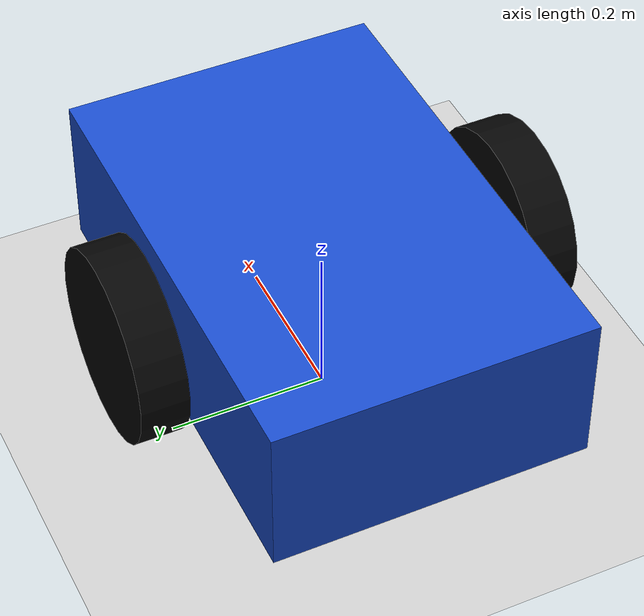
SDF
<?xml version="1.0" ?>
<sdf version="1.10">
  <world name="mobile_base_minimal">
    <physics name="1ms" type="ignored">
      <max_step_size>0.001</max_step_size>
      <real_time_factor>1.0</real_time_factor>
    </physics>

    <plugin filename="gz-sim-physics-system" name="gz::sim::systems::Physics"/>
    <plugin filename="gz-sim-user-commands-system" name="gz::sim::systems::UserCommands"/>
    <plugin filename="gz-sim-scene-broadcaster-system" name="gz::sim::systems::SceneBroadcaster"/>

    <light name="sun" type="directional">
      <cast_shadows>true</cast_shadows>
      <pose>0 0 10 0 0 0</pose>
      <diffuse>0.8 0.8 0.8 1</diffuse>
      <specular>0.2 0.2 0.2 1</specular>
      <direction>-0.5 0.1 -0.9</direction>
    </light>

    <model name="ground_plane">
      <static>true</static>
      <link name="link">
        <collision name="collision">
          <geometry>
            <plane>
              <normal>0 0 1</normal>
              <size>10 10</size>
            </plane>
          </geometry>
        </collision>
        <visual name="visual">
          <geometry>
            <plane>
              <normal>0 0 1</normal>
              <size>10 10</size>
            </plane>
          </geometry>
          <material>
            <ambient>0.8 0.8 0.8 1</ambient>
            <diffuse>0.8 0.8 0.8 1</diffuse>
          </material>
        </visual>
      </link>
    </model>

    <model name="two_wheel_learning_base">
      <pose>0 0 0.18 0 0 0</pose>
      <link name="chassis">
        <inertial>
          <mass>5.0</mass>
          <inertia>
            <ixx>0.12</ixx>
            <iyy>0.12</iyy>
            <izz>0.12</izz>
          </inertia>
        </inertial>
        <collision name="collision">
          <geometry>
            <box>
              <size>0.6 0.4 0.2</size>
            </box>
          </geometry>
        </collision>
        <visual name="visual">
          <geometry>
            <box>
              <size>0.6 0.4 0.2</size>
            </box>
          </geometry>
          <material>
            <ambient>0.1 0.3 0.8 1</ambient>
            <diffuse>0.1 0.3 0.8 1</diffuse>
          </material>
        </visual>
      </link>

      <link name="left_wheel">
        <pose>0 0.25 0 -1.5708 0 0</pose>
        <collision name="collision">
          <geometry>
            <cylinder>
              <radius>0.12</radius>
              <length>0.06</length>
            </cylinder>
          </geometry>
        </collision>
        <visual name="visual">
          <geometry>
            <cylinder>
              <radius>0.12</radius>
              <length>0.06</length>
            </cylinder>
          </geometry>
          <material>
            <ambient>0.02 0.02 0.02 1</ambient>
            <diffuse>0.02 0.02 0.02 1</diffuse>
          </material>
        </visual>
      </link>

      <link name="right_wheel">
        <pose>0 -0.25 0 -1.5708 0 0</pose>
        <collision name="collision">
          <geometry>
            <cylinder>
              <radius>0.12</radius>
              <length>0.06</length>
            </cylinder>
          </geometry>
        </collision>
        <visual name="visual">
          <geometry>
            <cylinder>
              <radius>0.12</radius>
              <length>0.06</length>
            </cylinder>
          </geometry>
          <material>
            <ambient>0.02 0.02 0.02 1</ambient>
            <diffuse>0.02 0.02 0.02 1</diffuse>
          </material>
        </visual>
      </link>

      <joint name="left_wheel_joint" type="revolute">
        <parent>chassis</parent>
        <child>left_wheel</child>
        <axis>
          <xyz>0 1 0</xyz>
        </axis>
      </joint>

      <joint name="right_wheel_joint" type="revolute">
        <parent>chassis</parent>
        <child>right_wheel</child>
        <axis>
          <xyz>0 1 0</xyz>
        </axis>
      </joint>
    </model>
  </world>
</sdf>
